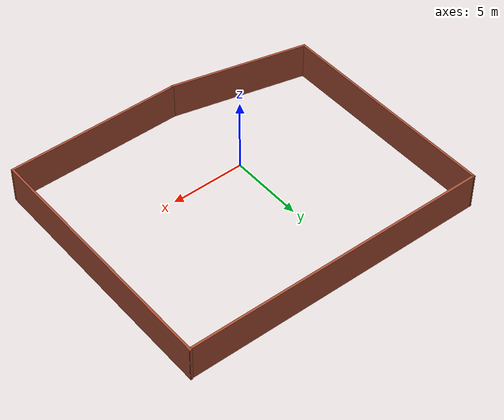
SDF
<?xml version='1.0'?>
<sdf version='1.7'>
  <model name='maze_squre'>
    <pose>1.8523 2.52286 0 0 -0 0</pose>
    <link name='Wall_1'>
      <collision name='Wall_1_Collision'>
        <geometry>
          <box>
            <size>17 0.15 2.5</size>
          </box>
        </geometry>
        <pose>0 0 1.25 0 -0 0</pose>
      </collision>
      <visual name='Wall_1_Visual'>
        <pose>0 0 1.25 0 -0 0</pose>
        <geometry>
          <box>
            <size>17 0.15 2.5</size>
          </box>
        </geometry>
        <material>
          <script>
            <uri>file://media/materials/scripts/gazebo.material</uri>
            <name>Gazebo/Bricks</name>
          </script>
          <ambient>1 1 1 1</ambient>
        </material>
        <meta>
          <layer>0</layer>
        </meta>
      </visual>
      <pose>10.2555 -0.016793 0 0 -0 1.5708</pose>
    </link>
    <link name='Wall_2'>
      <collision name='Wall_2_Collision'>
        <geometry>
          <box>
            <size>20.6312 0.15 2.5</size>
          </box>
        </geometry>
        <pose>0 0 1.25 0 -0 0</pose>
      </collision>
      <visual name='Wall_2_Visual'>
        <pose>0 0 1.25 0 -0 0</pose>
        <geometry>
          <box>
            <size>20.6312 0.15 2.5</size>
          </box>
        </geometry>
        <material>
          <script>
            <uri>file://media/materials/scripts/gazebo.material</uri>
            <name>Gazebo/Bricks</name>
          </script>
          <ambient>1 1 1 1</ambient>
        </material>
        <meta>
          <layer>0</layer>
        </meta>
      </visual>
      <pose>0.015126 8.47679 0 0 -0 3.1297</pose>
    </link>
    <link name='Wall_3'>
      <collision name='Wall_3_Collision'>
        <geometry>
          <box>
            <size>15.2098 0.15 2.5</size>
          </box>
        </geometry>
        <pose>0 0 1.25 0 -0 0</pose>
      </collision>
      <visual name='Wall_3_Visual'>
        <pose>0 0 1.25 0 -0 0</pose>
        <geometry>
          <box>
            <size>15.2098 0.15 2.5</size>
          </box>
        </geometry>
        <material>
          <script>
            <uri>file://media/materials/scripts/gazebo.material</uri>
            <name>Gazebo/Bricks</name>
          </script>
          <ambient>1 1 1 1</ambient>
        </material>
        <meta>
          <layer>0</layer>
        </meta>
      </visual>
      <pose>-10.2325 1.06869 0 0 -0 -1.56772</pose>
    </link>
    <link name='Wall_4'>
      <collision name='Wall_4_Collision'>
        <geometry>
          <box>
            <size>9.23631 0.15 2.5</size>
          </box>
        </geometry>
        <pose>0 0 1.25 0 -0 0</pose>
      </collision>
      <visual name='Wall_4_Visual'>
        <pose>0 0 1.25 0 -0 0</pose>
        <geometry>
          <box>
            <size>9.23631 0.15 2.5</size>
          </box>
        </geometry>
        <material>
          <script>
            <uri>file://media/materials/scripts/gazebo.material</uri>
            <name>Gazebo/Bricks</name>
          </script>
          <ambient>1 1 1 1</ambient>
        </material>
        <meta>
          <layer>0</layer>
        </meta>
      </visual>
      <pose>-5.76155 -7.5226 0 0 -0 -0.235807</pose>
    </link>
    <link name='Wall_5'>
      <collision name='Wall_5_Collision'>
        <geometry>
          <box>
            <size>11.75 0.15 2.5</size>
          </box>
        </geometry>
        <pose>0 0 1.25 0 -0 0</pose>
      </collision>
      <visual name='Wall_5_Visual'>
        <pose>0 0 1.25 0 -0 0</pose>
        <geometry>
          <box>
            <size>11.75 0.15 2.5</size>
          </box>
        </geometry>
        <material>
          <script>
            <uri>file://media/materials/scripts/gazebo.material</uri>
            <name>Gazebo/Bricks</name>
          </script>
          <ambient>1 1 1 1</ambient>
        </material>
        <meta>
          <layer>0</layer>
        </meta>
      </visual>
      <pose>4.45588 -8.56628 0 0 -0 0</pose>
    </link>
    <static>1</static>
  </model>
</sdf>
